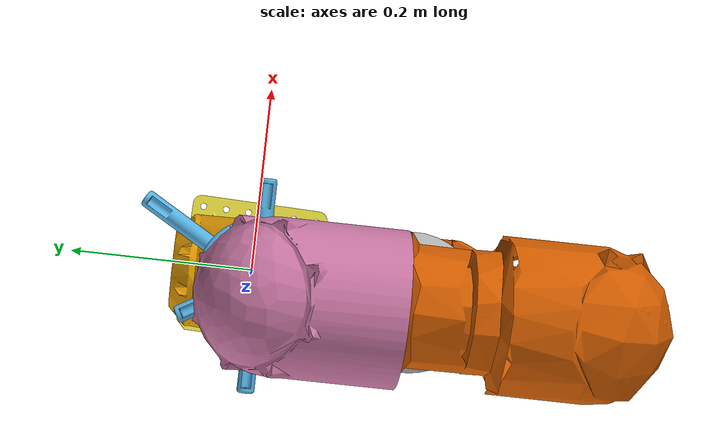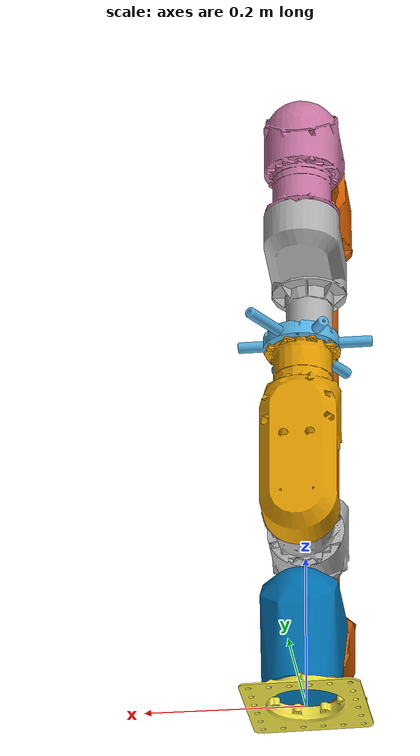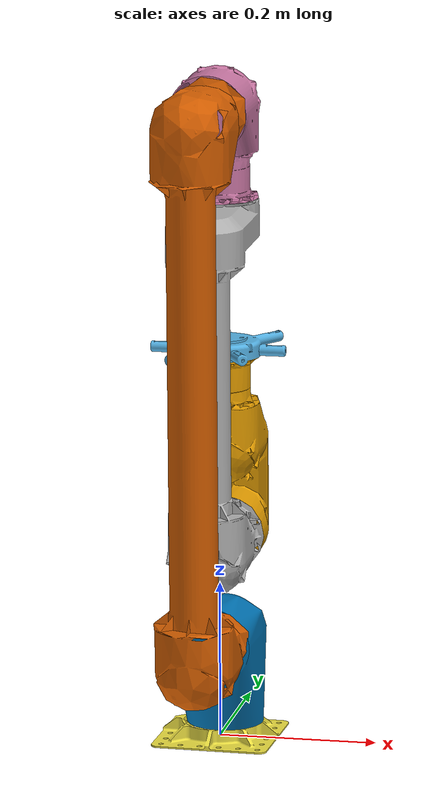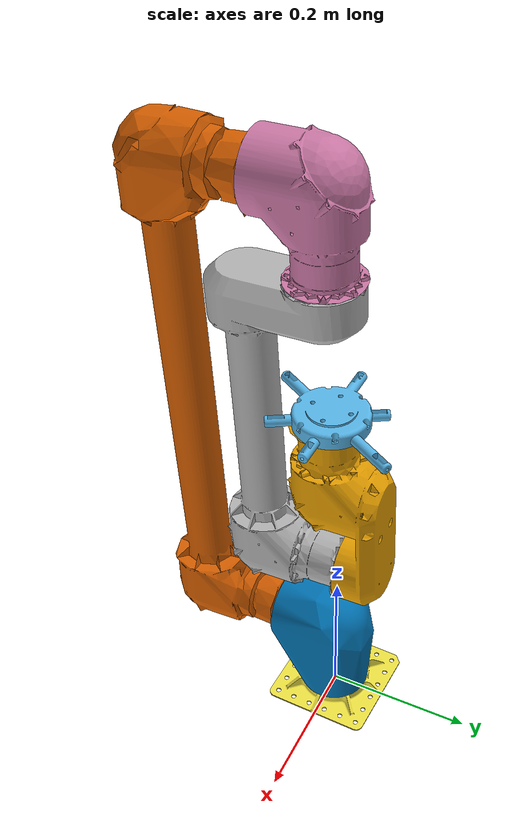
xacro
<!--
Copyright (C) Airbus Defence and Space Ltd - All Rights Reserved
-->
<?xml version="1.0"?>
<robot xmlns:xacro="http://www.ros.org/wiki/xacro" name="vispa">

  <!-- Xacro constants -->

  <xacro:property name="C_PI" value="3.14159265359" />
  <xacro:property name="C_PI_2" value="${C_PI / 2}" />
  <xacro:property name="C_2_PI" value="${C_PI * 2}" />
  <xacro:property name="C_1_DEGREE" value="${C_PI/180}" />
  <!-- Full -C_PI to C_PI limits in a revolute joint confuses ros_control:
  	need to truncate position limits for joints with 360 degree rotation -->
  <xacro:property name="PI_LIMIT_MARGIN" value="1e-4" />
  <xacro:property name="C_PI_POS" value="${C_PI - PI_LIMIT_MARGIN}" />

  <xacro:property name="JOINT_TORQUE" value="50" /><!-- 50Nm -->
  <xacro:property name="JOINT_RATE" value="0.09395689" />
  <xacro:property name="JOINT_RATIO" value="1" /><!-- Gear Ratio -->
   <xacro:property name="JOINT_MASS" value="1.5" /> <!--Kg-->

  <xacro:property name="LIMB_1_MASS" value="1.0" />
  <xacro:property name="LIMB_2_MASS" value="0.66" />

  <xacro:property name="ALM_BASE_MASS" value="0.627" />
  <xacro:property name="ALM_ELBOW_MASS" value="0.363" />
  <xacro:property name="ALM_WRIST_MASS" value="0.2" />

  <xacro:property name="JOINT_DAMPING" value="100" />

  <!-- Xacro macros -->

  <!-- Dummy inertial properties (all links apart from world must have it defined -->
  <xacro:macro name="default_inertial" params="mass iner">
    <inertial>
      <mass value="${mass}"/>
      <inertia ixx="${iner}" ixy="0" ixz="0" iyy="${iner}" iyz="0" izz="${iner}"/>
      <origin xyz="0 0 0" />
    </inertial>
  </xacro:macro>

  <!-- Used to approximate link inertia based on the link bounding box. -->
  <!-- Introduced because "real" inertia calculated with Meshlab broke Gazebo simulation. -->
  <xacro:macro name="box_inertia" params="mass x y z orig">
    <inertial>
      <mass value="${mass}"/>
      <inertia ixx="${(y * y + z * z) / 12}" ixy="0" ixz="0" iyy="${(x * x + z * z) / 12}" iyz="0" izz="${(x * x + y * y) / 12}"/>
      <origin xyz="${orig}" />
    </inertial>
  </xacro:macro>

  <!-- Standard ROS(-industrial) frames -->
  <!-- inertials not needed here -->
  <link name="base_link" />
  <link name="base" />
  <link name="world" />

  <!-- VISPA links -->

  <link name="link0">
    <visual>
      <geometry>
        <mesh filename="package://vispa_description/meshes/LINK_BASE.stl" scale="0.001 0.001 0.001"/> <!-- Needed to scale as CAD exported in mm but rviz comsumes in SI units i.e. metres-->
      </geometry>
    </visual>
    <collision>
      <geometry>
        <mesh filename="package://vispa_description/meshes/LINK_BASE_col.stl" scale="0.001 0.001 0.001"/>
      </geometry>
    </collision>
    <xacro:box_inertia mass="${ALM_BASE_MASS}" x="0.151000" y="0.150985" z="0.105000" orig="0 0 0.0" />
  </link>

  <link name="link1">
    <visual>
      <geometry>
        <mesh filename="package://vispa_description/meshes/LINK_0.stl" scale="0.001 0.001 0.001"/>
      </geometry>
    </visual>
    <collision>
      <geometry>
        <mesh filename="package://vispa_description/meshes/LINK_0_col.stl" scale="0.001 0.001 0.001"/>
      </geometry>
    </collision>
    <xacro:box_inertia mass="${JOINT_MASS}" x="0.118000" y="0.119000" z="0.291000" orig="0.0 -0.004173 0.032607" />
  </link>

  <link name="link2">
    <visual>
      <geometry>
        <mesh filename="package://vispa_description/meshes/LINK_1.stl" scale="0.001 0.001 0.001"/>
      </geometry>
    </visual>
    <collision>
      <geometry>
        <mesh filename="package://vispa_description/meshes/LINK_1_col.stl" scale="0.001 0.001 0.001"/>
      </geometry>
    </collision>
    <xacro:box_inertia mass="${JOINT_MASS + LIMB_1_MASS}" x="0.118000" y="1.057500" z="0.261000" orig="0.0 0.219495 0.063379" />
  </link>

  <link name="link3">
    <visual>
      <geometry>
        <mesh filename="package://vispa_description/meshes/LINK_2.stl" scale="0.001 0.001 0.001"/>
      </geometry>
    </visual>
    <collision>
      <geometry>
        <mesh filename="package://vispa_description/meshes/LINK_2_col.stl" scale="0.001 0.001 0.001"/>
      </geometry>
    </collision>
    <xacro:box_inertia mass="${JOINT_MASS + ALM_ELBOW_MASS}" x="0.097000" y="0.105000" z="0.165181" orig="0.0 0.003751 -0.066289" />
  </link>

  <link name="link4">
    <visual>
      <geometry>
        <mesh filename="package://vispa_description/meshes/LINK_3.stl" scale="0.001 0.001 0.001"/>
      </geometry>
    </visual>
    <collision>
      <geometry>
        <mesh filename="package://vispa_description/meshes/LINK_3_col.stl" scale="0.001 0.001 0.001"/>
      </geometry>
    </collision>
    <xacro:box_inertia mass="${JOINT_MASS + LIMB_2_MASS}" x="0.079473" y="0.161490" z="0.800000" orig="-0.000267 0.040905 0.237073" />
  </link>

  <link name="link5">
    <visual>
      <geometry>
        <mesh filename="package://vispa_description/meshes/LINK_4.stl" scale="0.001 0.001 0.001"/>
      </geometry>
    </visual>
    <collision>
      <geometry>
        <mesh filename="package://vispa_description/meshes/LINK_4_col.stl" scale="0.001 0.001 0.001"/>
      </geometry>
    </collision>
    <xacro:box_inertia mass="${JOINT_MASS}" x="0.078986" y="0.099503" z="0.138700" orig="0.0 0.003134 0.063172" />
  </link>

  <link name="link6">
    <visual>
      <geometry>
        <mesh filename="package://vispa_description/meshes/LINK_5.stl" scale="0.001 0.001 0.001"/>
      </geometry>
    </visual>
    <collision>
      <geometry>
      	<mesh filename="package://vispa_description/meshes/LINK_5_col.stl" scale="0.001 0.001 0.001"/>
      </geometry>
    </collision>
    <xacro:box_inertia mass="${JOINT_MASS + ALM_WRIST_MASS}" x="0.103988" y="0.104000" z="0.168745" orig="0.000244 0.0 0.084854" />
  </link>

  <!-- Standard ROS(-industrial) and Gazebo joints -->

   <joint name="base_link-link0" type="fixed">
  	<parent link="base_link" />
  	<child link="link0" />
  </joint>

  <joint name="base_link-base" type="fixed">
  	<parent link="base_link" />
  	<child link="base" />
  </joint>

  <joint name="world-base_link" type="fixed">
  	<parent link="world" />
  	<child link="base_link" />
  </joint> -->

  <!-- VISPA joints -->
  <joint name="j01" type="revolute">
    <axis xyz="0 0 1" />
    <limit lower="${-C_PI_POS}" upper="${C_PI_POS}" velocity="${JOINT_RATE}" effort="${JOINT_TORQUE}" />
    <parent link="link0"/>
    <child link="link1"/>
    <origin xyz="0.0 0.0 0.0048" rpy="0 0 0" />
    <dynamics damping="${JOINT_DAMPING}" />
  </joint>

  <joint name="j12" type="revolute">
    <axis xyz="0 -1 0" />
    <limit lower="${-C_PI_2}" upper="${C_PI_2}" velocity="${JOINT_RATE}" effort="${JOINT_TORQUE}" />
    <parent link="link1"/>
    <child link="link2"/>
    <origin xyz="0.005 -0.075 0.135" rpy="0 ${-C_PI_2} 0" /> -->
    <dynamics damping="${JOINT_DAMPING}" />
  </joint>

  <joint name="j23" type="revolute">
    <axis xyz="0 1 0" />
    <limit lower="${-C_PI_POS}" upper="${C_PI_POS}" velocity="${JOINT_RATE}" effort="${JOINT_TORQUE}" />
    <parent link="link2"/>
    <child link="link3"/>
    <origin xyz="0.667 -0.022 0.0" rpy="0 0 0" />
    <dynamics damping="${JOINT_DAMPING}" />
  </joint>

  <joint name="j34" type="revolute">
    <axis xyz="-1 0 0" />
    <limit lower="${-C_PI_POS}" upper="${C_PI_POS}" velocity="${JOINT_RATE}" effort="${JOINT_TORQUE}" />
    <parent link="link3"/>
    <child link="link4"/>
    <origin xyz="-0.113 0.08 0.0" rpy="0 0 0" />
    <dynamics damping="${JOINT_DAMPING}" />
  </joint>

  <joint name="j45" type="revolute">
    <axis xyz="0 1 0" />
    <limit lower="${-C_PI_POS}" upper="${C_PI_POS}" velocity="${JOINT_RATE}" effort="${JOINT_TORQUE}" />
    <parent link="link4"/>
    <child link="link5"/>
    <origin xyz="-0.435 0.03 0.0" rpy="0 0 0" />
    <dynamics damping="${JOINT_DAMPING}" />
  </joint>

  <joint name="j56" type="revolute">
    <axis xyz="0 0 -1" />
    <limit lower="${-C_PI_POS}" upper="${C_PI_POS}" velocity="${JOINT_RATE}" effort="${JOINT_TORQUE}" />
    <parent link="link5"/>
    <child link="link6"/>
    <origin xyz="0.237 -0.021 0.0"  rpy="0 ${C_PI_2} 0" />
    <dynamics damping="${JOINT_DAMPING}" />
  </joint>

  <!-- Transmissions (ros_control) -->
  <transmission name="j01_t">
    <type>transmission_interface/SimpleTransmission</type>
    <joint name="j01">
      <hardwareInterface>EffortJointInterface</hardwareInterface>
    </joint>
    <actuator name="motor_j01">
    	<mechanicalReduction>${JOINT_RATIO}</mechanicalReduction>
    </actuator>
  </transmission>

  <transmission name="j12_t">
    <type>transmission_interface/SimpleTransmission</type>
    <joint name="j12">
      <hardwareInterface>EffortJointInterface</hardwareInterface>
    </joint>
    <actuator name="motor_j12">
    	<mechanicalReduction>${JOINT_RATIO}</mechanicalReduction>
    </actuator>
  </transmission>

  <transmission name="j23_t">
    <type>transmission_interface/SimpleTransmission</type>
    <joint name="j23">
      <hardwareInterface>EffortJointInterface</hardwareInterface>
    </joint>
    <actuator name="motor_j23">
    	<mechanicalReduction>${JOINT_RATIO}</mechanicalReduction>
    </actuator>
  </transmission>

  <transmission name="j34_t">
    <type>transmission_interface/SimpleTransmission</type>
    <joint name="j34">
      <hardwareInterface>EffortJointInterface</hardwareInterface>
    </joint>
    <actuator name="motor_j34">
    	<mechanicalReduction>${JOINT_RATIO}</mechanicalReduction>
    </actuator>
  </transmission>

  <transmission name="j45_t">
    <type>transmission_interface/SimpleTransmission</type>
    <joint name="j45">
      <hardwareInterface>EffortJointInterface</hardwareInterface>
    </joint>
    <actuator name="motor_j45">
    	<mechanicalReduction>${JOINT_RATIO}</mechanicalReduction>
    </actuator>
  </transmission>

  <transmission name="j56_t">
    <type>transmission_interface/SimpleTransmission</type>
    <joint name="j56">
      <hardwareInterface>EffortJointInterface</hardwareInterface>
    </joint>
    <actuator name="motor_j56">
    	<mechanicalReduction>${JOINT_RATIO}</mechanicalReduction>
    </actuator>
  </transmission>

</robot>
